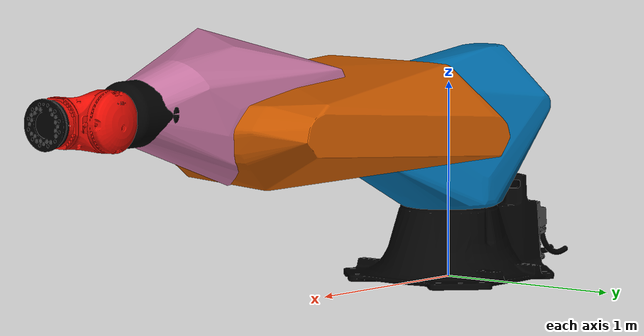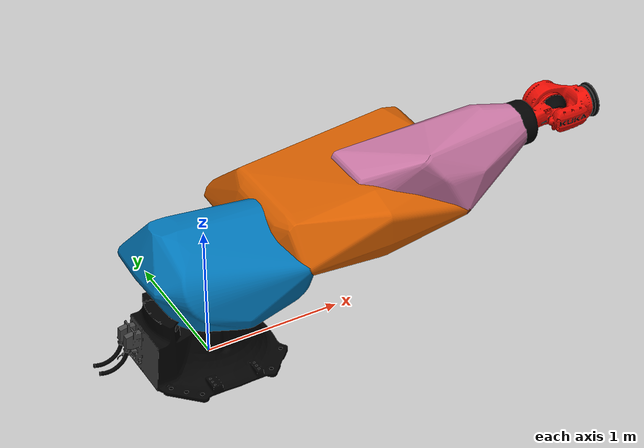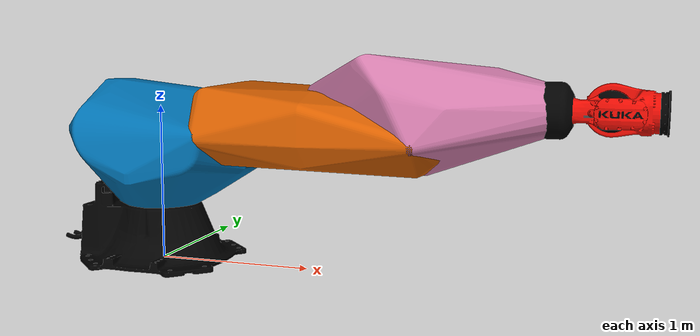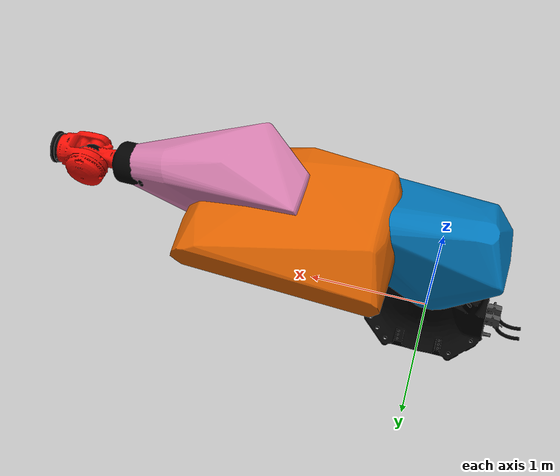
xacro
<?xml version="1.0" encoding="UTF-8"?>
<robot xmlns:xacro="http://ros.org/wiki/xacro" name="kr300_r2800_2_mt">
  <!-- Import macro files  -->
  <xacro:include filename="$(find kuka_fortec_support)/urdf/kr300_r2800_2_mt_macro.xacro"/>
  <xacro:include filename="$(find kuka_fortec_support)/urdf/kr_fortec_ros2_control_macro.xacro"/>
  <!-- Read additional arguments  -->
  <xacro:arg name="driver_version" default="rsi_only"/>
  <xacro:arg name="mode" default="hardware"/>
  <xacro:arg name="gpio_config" default=""/>
  <xacro:arg name="roundtrip_time" default="0"/>
  <xacro:arg name="client_ip" default="0.0.0.0"/>
  <xacro:arg name="client_port" default="59152"/>
  <xacro:arg name="mxa_client_port" default="1337"/>
  <xacro:arg name="controller_ip" default="0.0.0.0"/>
  <xacro:arg name="verify_robot_model" default="true"/>
  <xacro:arg name="prefix" default=""/>
  <xacro:arg name="x" default="0"/>
  <xacro:arg name="y" default="0"/>
  <xacro:arg name="z" default="0"/>
  <xacro:arg name="roll" default="0"/>
  <xacro:arg name="pitch" default="0"/>
  <xacro:arg name="yaw" default="0"/>
  <xacro:arg name="rsi_xml_config_file" default=""/>
  <xacro:kuka_fortec_ros2_control name="$(arg prefix)kr300_r2800_2_mt" driver_version="$(arg driver_version)" client_ip="$(arg client_ip)" client_port="$(arg client_port)" mxa_client_port="$(arg mxa_client_port)" controller_ip="$(arg controller_ip)" prefix="$(arg prefix)" mode="$(arg mode)" gpio_config="$(arg gpio_config)" roundtrip_time="$(arg roundtrip_time)" verify_robot_model="$(arg verify_robot_model)" rsi_xml_config_file="$(arg rsi_xml_config_file)">
    <ext_axes_ros2_control_joints/>
  </xacro:kuka_fortec_ros2_control>
  <!-- world link -->
  <link name="world"/>
  <!-- robot links, joints -->
  <xacro:kuka_kr300_r2800_2_mt_robot prefix="$(arg prefix)" package_name="kuka_fortec_support"/>
  <!-- default world - base_link joint -->
  <joint name="$(arg prefix)world-base_link" type="fixed">
    <parent link="world"/>
    <child link="$(arg prefix)base_link"/>
    <origin xyz="$(arg x) $(arg y) $(arg z)" rpy="$(arg roll) $(arg pitch) $(arg yaw)"/>
  </joint>
</robot>

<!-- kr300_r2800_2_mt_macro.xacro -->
<robot xmlns:xacro="http://www.ros.org/wiki/xacro" name="kr300_r2800_2_mt">
  <xacro:macro name="kuka_kr300_r2800_2_mt_robot" params="prefix package_name">
    <link name="${prefix}base"/>
    <link name="${prefix}base_link">
      <collision>
        <geometry>
          <mesh filename="package://${package_name}/meshes/kr300_r2800_2_mt/collision/base_link.stl"/>
        </geometry>
        <origin rpy="0.0 -0.0 0.0" xyz="0.0 0.0 0.0"/>
      </collision>
      <inertial>
        <inertia ixx="35.410866659825984" ixy="0.0" ixz="0.0" iyy="34.55474294133751" iyz="0.0" izz="38.97491524228647"/>
        <mass value="4.3839E2"/>
        <origin rpy="-0.2634507794798889 -0.011417952338033853 -1.583116210409526" xyz="-0.02196341111795434 2.6633773580602294E-4 0.2908246588653938"/>
      </inertial>
      <visual>
        <geometry>
          <mesh filename="package://${package_name}/meshes/kr300_r2800_2_mt/visual/base_link.dae"/>
        </geometry>
        <origin rpy="0.0 -0.0 0.0" xyz="0.0 0.0 0.0"/>
      </visual>
    </link>
    <link name="${prefix}flange"/>
    <link name="${prefix}link_1">
      <collision>
        <geometry>
          <mesh filename="package://${package_name}/meshes/kr300_r2800_2_mt/collision/link_1.stl"/>
        </geometry>
        <origin rpy="-3.141592653589793 0.0 -0.0" xyz="0.0 -5.634599922876973e-17 0.4601"/>
      </collision>
      <inertial>
        <inertia ixx="33.87155206611269" ixy="0.0" ixz="0.0" iyy="73.40332727644804" iyz="0.0" izz="90.87256570826523"/>
        <mass value="5.8662E2"/>
        <origin rpy="-1.5900025949519248 -0.0055486359630952525 0.005318876071887375" xyz="0.06073307456274931 0.008179142374961645 -0.3078055828304523"/>
      </inertial>
      <visual>
        <geometry>
          <mesh filename="package://${package_name}/meshes/kr300_r2800_2_mt/visual/link_1.dae"/>
        </geometry>
        <origin rpy="-3.141592653589793 0.0 -0.0" xyz="0.0 -5.634599922876973e-17 0.4601"/>
      </visual>
    </link>
    <link name="${prefix}link_2">
      <collision>
        <geometry>
          <mesh filename="package://${package_name}/meshes/kr300_r2800_2_mt/collision/link_2.stl"/>
        </geometry>
        <origin rpy="1.5707963267948968 -0.0 1.5707963267948966" xyz="-0.86 -0.49999999999999994 1.0900581159210591e-16"/>
      </collision>
      <inertial>
        <inertia ixx="244.50647647353642" ixy="0.0" ixz="0.0" iyy="49.198090154026325" iyz="0.0" izz="279.8190505897405"/>
        <mass value="7.3429000000000019E2"/>
        <origin rpy="-1.3718367456754406 -1.547362584971657 2.9399464369736323" xyz="0.5473160743030682 -0.007731954949679284 0.04776093559765214"/>
      </inertial>
      <visual>
        <geometry>
          <mesh filename="package://${package_name}/meshes/kr300_r2800_2_mt/visual/link_2.dae"/>
        </geometry>
        <origin rpy="1.5707963267948968 -0.0 1.5707963267948966" xyz="-0.86 -0.49999999999999994 1.0900581159210591e-16"/>
      </visual>
    </link>
    <link name="${prefix}link_3">
      <collision>
        <geometry>
          <mesh filename="package://${package_name}/meshes/kr300_r2800_2_mt/collision/link_3.stl"/>
        </geometry>
        <origin rpy="1.5707963267948968 -0.0 -0.0" xyz="-0.5000000000000001 2.11 1.0900581159210584e-16"/>
      </collision>
      <inertial>
        <inertia ixx="94.58779070370784" ixy="0.0" ixz="0.0" iyy="12.778429491747248" iyz="0.0" izz="98.5803684136603"/>
        <mass value="5.0064599999999996E2"/>
        <origin rpy="-0.004167314080299402 0.05497939548244204 1.5015439278651141" xyz="-0.23525594541424868 -0.09332184547575578 -0.009671485786503266"/>
      </inertial>
      <visual>
        <geometry>
          <mesh filename="package://${package_name}/meshes/kr300_r2800_2_mt/visual/link_3.dae"/>
        </geometry>
        <origin rpy="1.5707963267948968 -0.0 -0.0" xyz="-0.5000000000000001 2.11 1.0900581159210584e-16"/>
      </visual>
    </link>
    <link name="${prefix}link_4">
      <collision>
        <geometry>
          <mesh filename="package://${package_name}/meshes/kr300_r2800_2_mt/collision/link_4.stl"/>
        </geometry>
        <origin rpy="1.8369701987210297e-16 1.5707963267948966 0.0" xyz="-2.29 3.479833879777203e-17 1.2118999999999998"/>
      </collision>
      <inertial>
        <inertia ixx="0.6936780086008919" ixy="0.0" ixz="0.0" iyy="2.785065576107537" iyz="0.0" izz="2.8625100540828337"/>
        <mass value="9.7442000000000007E1"/>
        <origin rpy="1.5709322720910581 -1.2743253802401944 -1.5707667143862865" xyz="-5.438697948307435E-7 0.0422933343722767 -0.18193497897865968"/>
      </inertial>
      <visual>
        <geometry>
          <mesh filename="package://${package_name}/meshes/kr300_r2800_2_mt/visual/link_4.dae"/>
        </geometry>
        <origin rpy="1.8369701987210297e-16 1.5707963267948966 0.0" xyz="-2.29 3.479833879777203e-17 1.2118999999999998"/>
      </visual>
    </link>
    <link name="${prefix}link_5">
      <collision>
        <geometry>
          <mesh filename="package://${package_name}/meshes/kr300_r2800_2_mt/collision/link_5.stl"/>
        </geometry>
        <origin rpy="1.5707963267948968 -3.749399456654644e-33 -6.123233995736766e-17" xyz="-1.5344999999999998 2.29 -0.1251"/>
      </collision>
      <inertial>
        <inertia ixx="1.1020383254601218" ixy="0.0" ixz="0.0" iyy="0.7839386923973062" iyz="0.0" izz="1.2082847469979934"/>
        <mass value="5.36088E1"/>
        <origin rpy="-1.5642278602027881 -0.8175710147649947 -0.011709797778757787" xyz="0.06813413576091985 -4.9894728477414026E-5 -0.08933900512266643"/>
      </inertial>
      <visual>
        <geometry>
          <mesh filename="package://${package_name}/meshes/kr300_r2800_2_mt/visual/link_5.dae"/>
        </geometry>
        <origin rpy="1.5707963267948968 -3.749399456654644e-33 -6.123233995736766e-17" xyz="-1.5344999999999998 2.29 -0.1251"/>
      </visual>
    </link>
    <link name="${prefix}link_6">
      <collision>
        <geometry>
          <mesh filename="package://${package_name}/meshes/kr300_r2800_2_mt/collision/link_6.stl"/>
        </geometry>
        <origin rpy="1.2246467991473532e-16 1.5707963267948966 0.0" xyz="-2.29 -1.0542371970459992e-16 1.7495999999999998"/>
      </collision>
      <inertial>
        <inertia ixx="0.1546272532239273" ixy="0.0" ixz="0.0" iyy="0.1547598728909128" iyz="0.0" izz="0.18961138268388045"/>
        <mass value="3.202E1"/>
        <origin rpy="0.0020471651340902893 7.476904024900574E-5 -1.5692303732486166" xyz="-4.8657089319175515E-5 -2.5301686445971257E-6 -0.020301339787632735"/>
      </inertial>
      <visual>
        <geometry>
          <mesh filename="package://${package_name}/meshes/kr300_r2800_2_mt/visual/link_6.dae"/>
        </geometry>
        <origin rpy="1.2246467991473532e-16 1.5707963267948966 0.0" xyz="-2.29 -1.0542371970459992e-16 1.7495999999999998"/>
      </visual>
    </link>
    <link name="${prefix}tool0"/>
    <joint name="${prefix}base_link-base" type="fixed">
      <child link="${prefix}base"/>
      <parent link="${prefix}base_link"/>
    </joint>
    <joint name="${prefix}joint_1" type="revolute">
      <axis xyz="0.0 0.0 1.0"/>
      <child link="${prefix}link_1"/>
      <limit effort="1.5E4" lower="-3.2288591125E0" upper="3.2288591125E0" velocity="6.9813170079773179E-1"/>
      <origin rpy="3.141592653589793 -0.0 0.0" xyz="0.0 0.0 0.4601"/>
      <parent link="${prefix}base_link"/>
    </joint>
    <joint name="${prefix}joint_2" type="revolute">
      <axis xyz="0.0 0.0 1.0"/>
      <child link="${prefix}link_2"/>
      <limit effort="1.788024E4" lower="-2.268928025E0" upper="3.4906585E-1" velocity="6.9813170079773179E-1"/>
      <origin rpy="1.5707963267948966 -0.0 0.0" xyz="0.5 0.0 -0.3999"/>
      <parent link="${prefix}link_1"/>
    </joint>
    <joint name="${prefix}joint_3" type="revolute">
      <axis xyz="0.0 0.0 1.0"/>
      <child link="${prefix}link_3"/>
      <limit effort="1.6714602145257235E4" lower="-1.74532925E0" upper="2.8797932625E0" velocity="6.9813170079773179E-1"/>
      <origin rpy="0.0 -0.0 0.0" xyz="1.25 0.0 0.0"/>
      <parent link="${prefix}link_2"/>
    </joint>
    <joint name="${prefix}joint_4" type="revolute">
      <axis xyz="0.0 0.0 1.0"/>
      <child link="${prefix}link_4"/>
      <limit effort="6.4398108360664783E3" lower="-6.108652375E0" upper="6.108652375E0" velocity="1.5707963267948966E0"/>
      <origin rpy="1.5707963267948966 -0.0 -1.5707963267948966" xyz="0.7119 -0.18 0.0"/>
      <parent link="${prefix}link_3"/>
    </joint>
    <joint name="${prefix}joint_5" type="revolute">
      <axis xyz="0.0 0.0 1.0"/>
      <child link="${prefix}link_5"/>
      <limit effort="6.4095991959749445E3" lower="-2.0943951E0" upper="2.0943951E0" velocity="1.5707963267948966E0"/>
      <origin rpy="0.0 1.5707963267948966 1.5707963267948966" xyz="0.0 0.1251 -0.32260000000000005"/>
      <parent link="${prefix}link_4"/>
    </joint>
    <joint name="${prefix}joint_6" type="revolute">
      <axis xyz="0.0 0.0 1.0"/>
      <child link="${prefix}link_6"/>
      <limit effort="3.1540572942480439E3" lower="-6.108652375E0" upper="6.108652375E0" velocity="2.2689280275926285E0"/>
      <origin rpy="1.5707963267948966 -0.0 -1.5707963267948966" xyz="0.21509999999999996 0.0 -0.1251"/>
      <parent link="${prefix}link_5"/>
    </joint>
    <joint name="${prefix}link6-flange" type="fixed">
      <child link="${prefix}flange"/>
      <origin rpy="0.0 1.5707963267948966 0.0" xyz="0.0 0.0 -0.08990000000000001"/>
      <parent link="${prefix}link_6"/>
    </joint>
    <joint name="${prefix}link6-tool0" type="fixed">
      <child link="${prefix}tool0"/>
      <origin rpy="3.141592653589793 1.2246467991473532E-16 3.141592653589793" xyz="0.0 0.0 -0.08990000000000001"/>
      <parent link="${prefix}link_6"/>
    </joint>
  </xacro:macro>
</robot>
